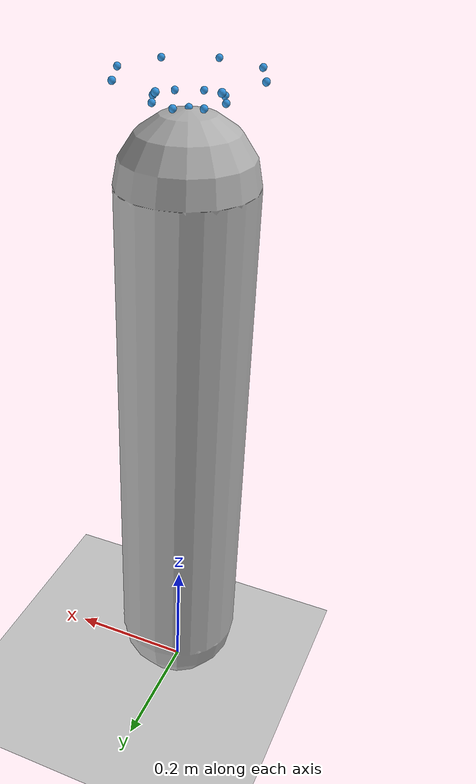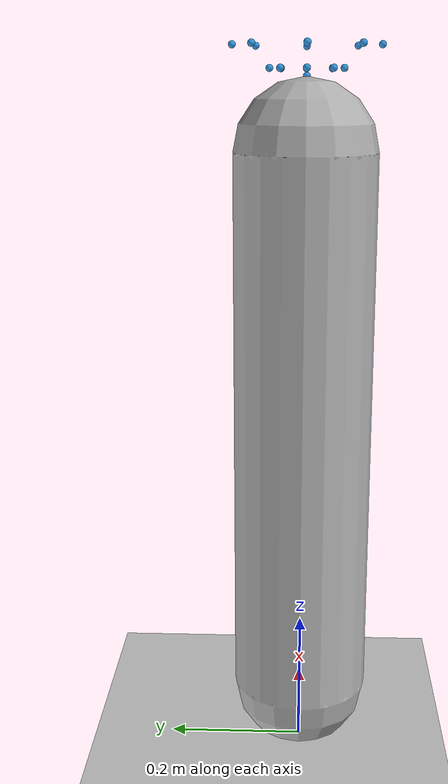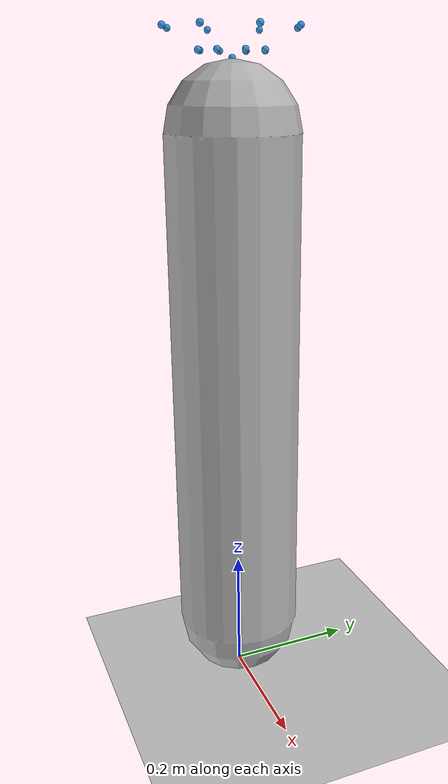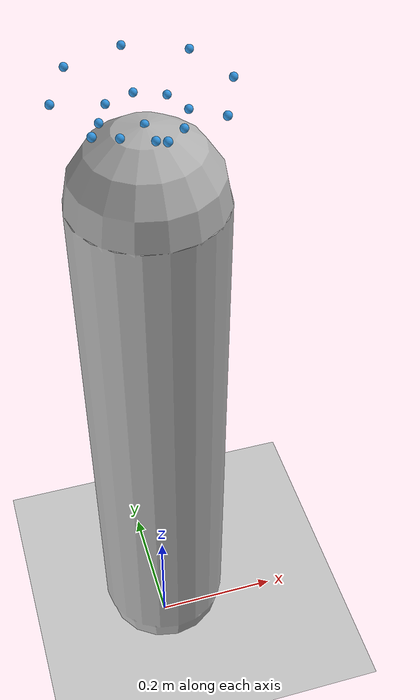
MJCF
<mujoco model="tactip_structural_grid">
    <option timestep="0.0005" gravity="0 0 -9.81"/>

    <asset>
        <texture name="skin_tex" type="2d" file="/home/dexter/Documents/GitHub/Robot_foot/assets/example_image.png"/>
        <material name="skin_mat" texture="skin_tex" texrepeat="1 1"/>
    </asset>

    <worldbody>
        <!-- Environment Illumination -->
        <light pos="0 0 4" dir="0 0 -1"/>
        <geom name="floor" type="plane" size="2 2 .1" rgba=".8 .8 .8 1"/>

        <!-- Rigid capsule obstacle -->
        <body name="obstacle" pos="0 0 0.5">
            <geom type="capsule" size="0.1 0.4" quat="1 0 0 0" rgba="0.7 0.7 0.7 1"/>
        </body>

        <!-- Main floating tracking frame for the sensor assembly -->
        <body name="sensor_housing" pos="0 0 1">
            <freejoint/>
            <inertial pos="0 0 0" mass="0.1" diaginertia="0.001 0.001 0.001"/>

            <!-- Center Node (Bottom center of your bowl structure: z=0) -->
            <body name="b_center" pos="0.00 0.00 0.000">
                <joint type="ball" stiffness="0.1" damping="0.2"/>
                <geom type="sphere" size="0.005" rgba="0.2 0.6 0.9 1" mass="0.01"/>
            </body>

            <!-- Inner Ring (Radius r=0.05, Parabolic curve z = 4 * r^2 = 0.01) -->
            <body name="b_north_in" pos="0.00 0.05 0.010">
                <joint type="ball" stiffness="0.1" damping="0.2"/>
                <geom type="sphere" size="0.005" rgba="0.2 0.6 0.9 1" mass="0.01"/>
            </body>
            <body name="b_south_in" pos="0.00 -0.05 0.010">
                <joint type="ball" stiffness="0.1" damping="0.2"/>
                <geom type="sphere" size="0.005" rgba="0.2 0.6 0.9 1" mass="0.01"/>
            </body>
            <body name="b_east_in" pos="0.05 0.00 0.010">
                <joint type="ball" stiffness="0.1" damping="0.2"/>
                <geom type="sphere" size="0.005" rgba="0.2 0.6 0.9 1" mass="0.01"/>
            </body>
            <body name="b_west_in" pos="-0.05 0.00 0.010">
                <joint type="ball" stiffness="0.1" damping="0.2"/>
                <geom type="sphere" size="0.005" rgba="0.2 0.6 0.9 1" mass="0.01"/>
            </body>

            <!-- Inner Diagonal Ring (Radius r=0.05, x and y split evenly, z=0.01) -->
            <body name="b_ne_in" pos="0.035 0.035 0.010">
                <joint type="ball" stiffness="0.1" damping="0.2"/>
                <geom type="sphere" size="0.005" rgba="0.2 0.6 0.9 1" mass="0.01"/>
            </body>
            <body name="b_nw_in" pos="-0.035 0.035 0.010">
                <joint type="ball" stiffness="0.1" damping="0.2"/>
                <geom type="sphere" size="0.005" rgba="0.2 0.6 0.9 1" mass="0.01"/>
            </body>
            <body name="b_se_in" pos="0.035 -0.035 0.010">
                <joint type="ball" stiffness="0.1" damping="0.2"/>
                <geom type="sphere" size="0.005" rgba="0.2 0.6 0.9 1" mass="0.01"/>
            </body>
            <body name="b_sw_in" pos="-0.035 -0.035 0.010">
                <joint type="ball" stiffness="0.1" damping="0.2"/>
                <geom type="sphere" size="0.005" rgba="0.2 0.6 0.9 1" mass="0.01"/>
            </body>

            <!-- Outer Rim (Radius r=0.10, Parabolic curve z = 4 * r^2 = 0.04) -->
            <body name="b_north_out" pos="0.00 0.10 0.040">
                <joint type="ball" stiffness="0.1" damping="0.2"/>
                <geom type="sphere" size="0.005" rgba="0.2 0.6 0.9 1" mass="0.01"/>
            </body>
            <body name="b_south_out" pos="0.00 -0.10 0.040">
                <joint type="ball" stiffness="0.1" damping="0.2"/>
                <geom type="sphere" size="0.005" rgba="0.2 0.6 0.9 1" mass="0.01"/>
            </body>
            <body name="b_east_out" pos="0.10 0.00 0.040">
                <joint type="ball" stiffness="0.1" damping="0.2"/>
                <geom type="sphere" size="0.005" rgba="0.2 0.6 0.9 1" mass="0.01"/>
            </body>
            <body name="b_west_out" pos="-0.10 0.00 0.040">
                <joint type="ball" stiffness="0.1" damping="0.2"/>
                <geom type="sphere" size="0.005" rgba="0.2 0.6 0.9 1" mass="0.01"/>
            </body>

            <!-- Outer Diagonal Rim (Radius r=0.10, x and y split evenly, z=0.04) -->
            <body name="b_ne_out" pos="0.071 0.071 0.040">
                <joint type="ball" stiffness="0.1" damping="0.2"/>
                <geom type="sphere" size="0.005" rgba="0.2 0.6 0.9 1" mass="0.01"/>
            </body>
            <body name="b_nw_out" pos="-0.071 0.071 0.040">
                <joint type="ball" stiffness="0.1" damping="0.2"/>
                <geom type="sphere" size="0.005" rgba="0.2 0.6 0.9 1" mass="0.01"/>
            </body>
            <body name="b_se_out" pos="0.071 -0.071 0.040">
                <joint type="ball" stiffness="0.1" damping="0.2"/>
                <geom type="sphere" size="0.005" rgba="0.2 0.6 0.9 1" mass="0.01"/>
            </body>
            <body name="b_sw_out" pos="-0.071 -0.071 0.040">
                <joint type="ball" stiffness="0.1" damping="0.2"/>
                <geom type="sphere" size="0.005" rgba="0.2 0.6 0.9 1" mass="0.01"/>
            </body>
        </body >
    </worldbody>
</mujoco>
